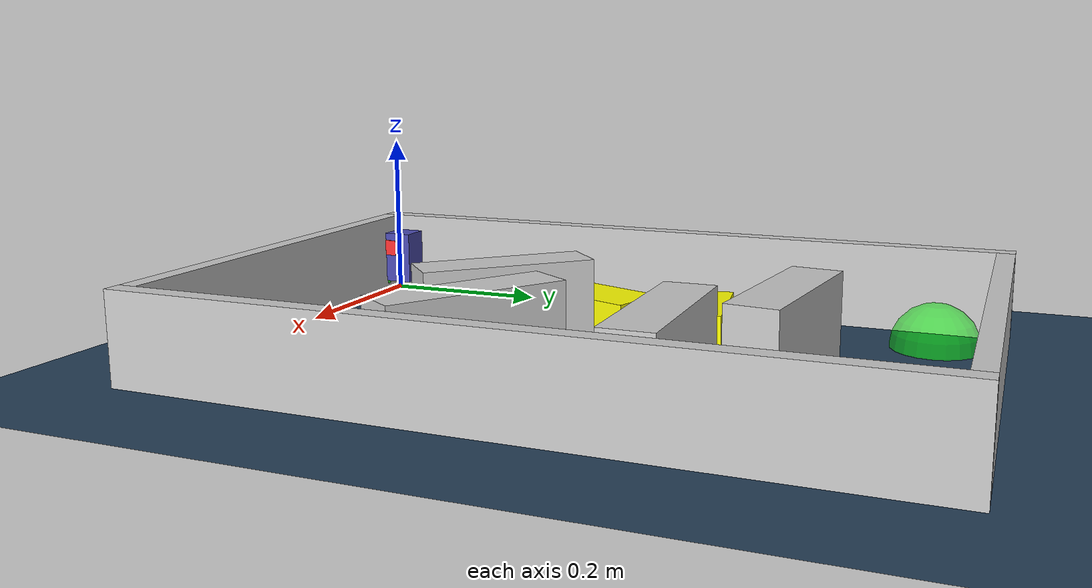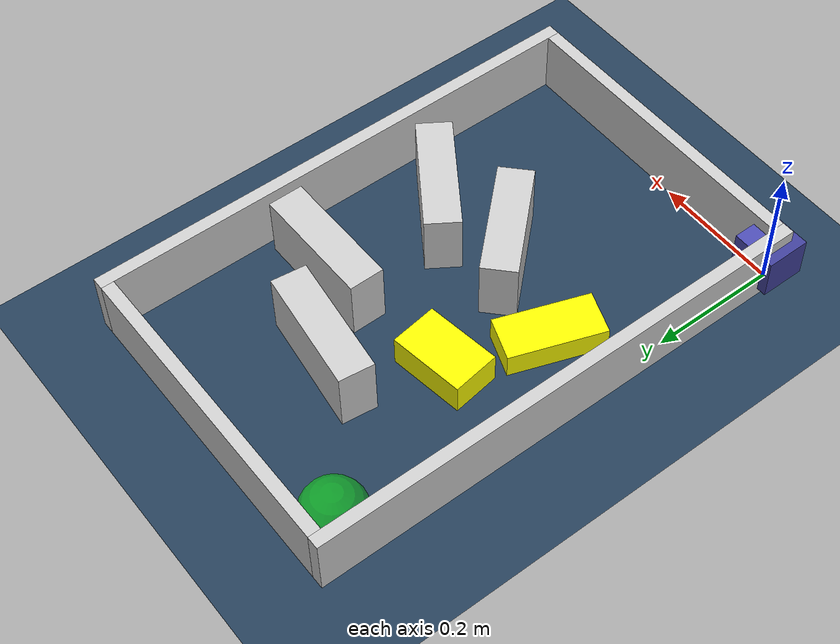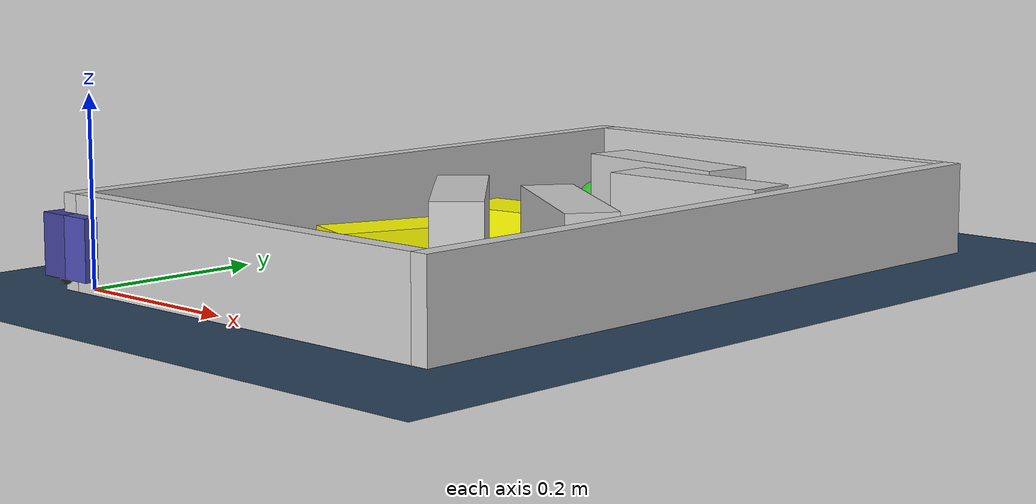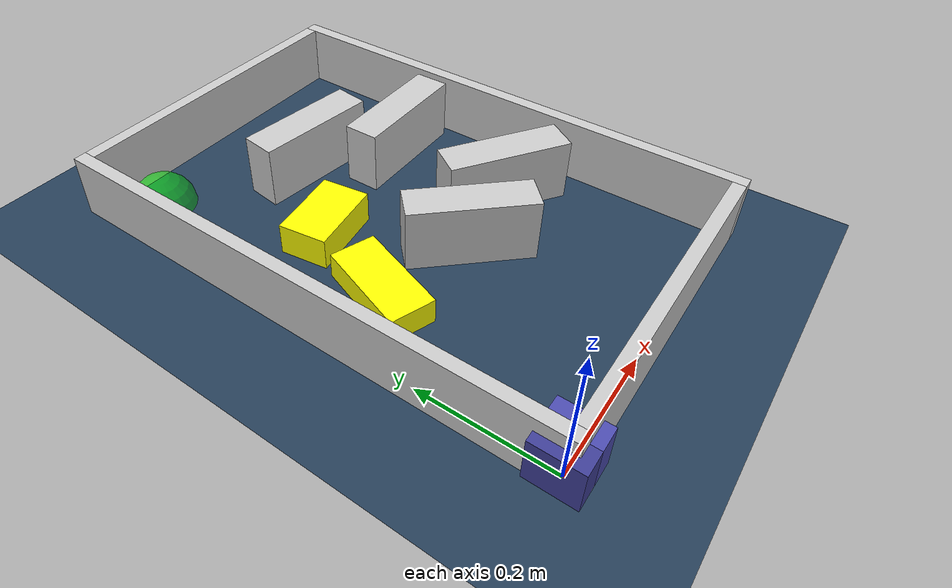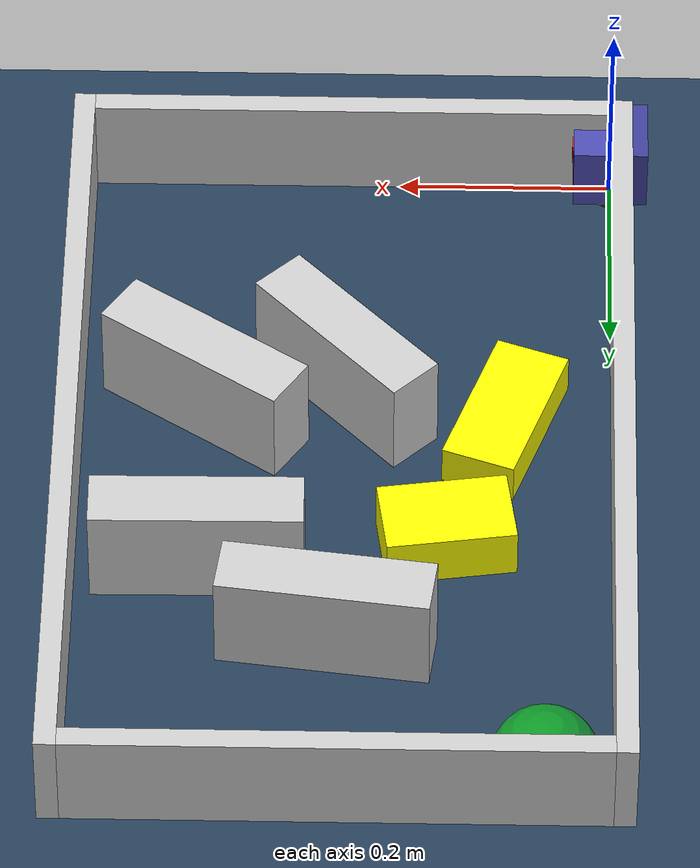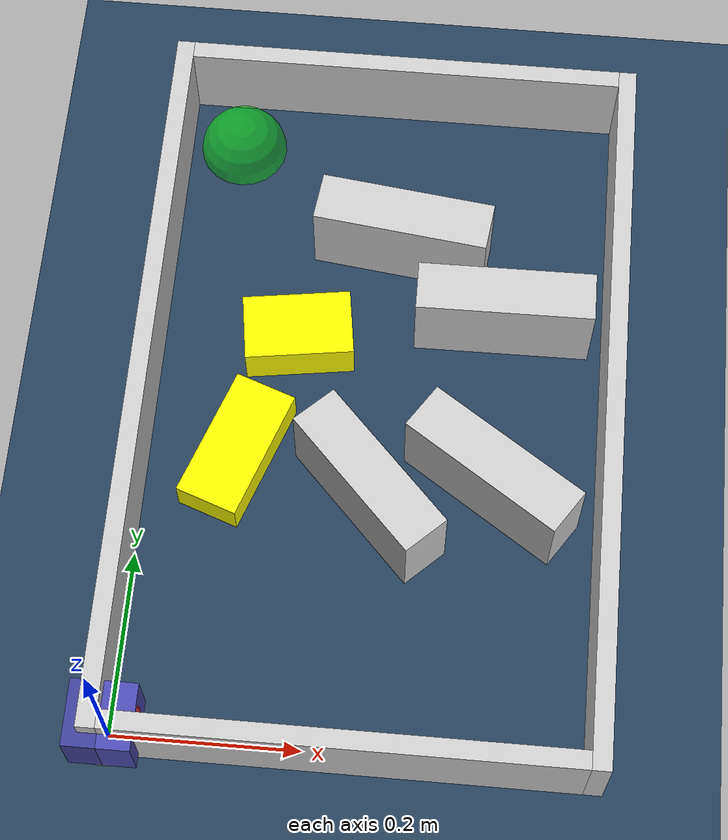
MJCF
<?xml version="1.0" ?>
<mujoco model="generated_environment">
  <option cone="elliptic" integrator="implicitfast" iterations="100" timestep="0.002"/>
  <default>
    <geom density="1"/>
  </default>
  <asset>
    <texture builtin="gradient" height="3072" rgb1="0.3 0.5 0.7" rgb2="0 0 0" type="skybox" width="512"/>
    <texture builtin="checker" height="300" mark="edge" markrgb="0.8 0.8 0.8" name="groundplane" rgb1="0.2 0.3 0.4" rgb2="0.1 0.2 0.3" type="2d" width="300"/>
    <material name="groundplane" reflectance="0.2" texrepeat="5 5" texture="groundplane" texuniform="true"/>
    <material name="robot" rgba="1.0 1.0 0.0 1.0"/>
  </asset>
  <include file="/home/dhruv/projects_dhruv/namo/namo_cpp/test_xml/little-car-modeling-package/assets/mjcf/little_car.xml"/>
  <worldbody>
    <light dir="0 0 -1" directional="true" pos="0 0 1.5"/>
    <geom condim="4" friction="0.5 0.005 0.001" material="groundplane" name="floor" size="0 0 0.05" type="plane"/>
    <body name="walls">
      <geom name="wall_1" condim="4" pos="-0.01 0.3875 0.05" friction="1 0.005 0.0001" rgba="0.800000011920929 0.800000011920929 0.800000011920929 1.0" size="0.01 0.40750000000000003 0.05" type="box"/>
      <geom name="wall_2" condim="4" pos="0.5 0.3875 0.05" friction="1 0.005 0.0001" rgba="0.800000011920929 0.800000011920929 0.800000011920929 1.0" size="0.01 0.40750000000000003 0.05" type="box"/>
      <geom name="wall_3" condim="4" pos="0.245 -0.01 0.05" friction="1 0.005 0.0001" rgba="0.800000011920929 0.800000011920929 0.800000011920929 1.0" size="0.245 0.01 0.05" type="box"/>
      <geom name="wall_4" condim="4" pos="0.245 0.785 0.05" friction="1 0.005 0.0001" rgba="0.800000011920929 0.800000011920929 0.800000011920929 1.0" size="0.245 0.01 0.05" type="box"/>
    </body>
    <body name="obstacle_1_movable">
      <geom name="obstacle_1_movable" condim="4" pos="0.0978545207123893 0.32250362100211855 0.02" quat="-0.9852018018598692 0 0 0.17139839442674834" friction="1 0.005 0.0001" rgba="1 1 0 1" size="0.035 0.075 0.02" type="box" mass="0.1"/>
      <joint type="free"/>
    </body>
    <body name="obstacle_2_movable">
      <geom name="obstacle_2_movable" condim="4" pos="0.15093003936922073 0.4662236351504974 0.025" quat="0.6542216612286962 0 0 0.7563028612792398" friction="1 0.005 0.0001" rgba="1 1 0 1" size="0.0375 0.06 0.025" type="box" mass="0.1"/>
      <joint type="free"/>
    </body>
    <body name="wall_5">
      <geom name="wall_5" condim="4" pos="0.25834700745999967 0.5911051566533808 0.05" quat="0.7497984487805279 0 0 0.6616662952019803" friction="1 0.005 0.0001" rgba="0.800000011920929 0.800000011920929 0.800000011920929 1.0" size="0.0275 0.0975 0.05" type="box"/>
    </body>
    <body name="wall_6">
      <geom name="wall_6" condim="4" pos="0.37614589557786055 0.3024728729309002 0.05" quat="-0.47141629140005126 0 0 0.8819108119320355" friction="1 0.005 0.0001" rgba="0.800000011920929 0.800000011920929 0.800000011920929 1.0" size="0.0275 0.0975 0.05" type="box"/>
    </body>
    <body name="wall_7">
      <geom name="wall_7" condim="4" pos="0.37719919326091456 0.500991200268152 0.05" quat="0.704268696426909 0 0 0.709933520291261" friction="1 0.005 0.0001" rgba="0.800000011920929 0.800000011920929 0.800000011920929 1.0" size="0.0275 0.0975 0.05" type="box"/>
    </body>
    <body name="wall_8">
      <geom name="wall_8" condim="4" pos="0.24609226685444724 0.27899887152184866 0.05" quat="0.3956120173282117 0 0 0.9184177327041888" friction="1 0.005 0.0001" rgba="0.800000011920929 0.800000011920929 0.800000011920929 1.0" size="0.095 0.0275 0.05" type="box"/>
    </body>
    <site name="goal" type="sphere" size="0.05 0.05 0.05" rgba="0 1 0 0.5" pos="0.060502 0.718623 0.0"/>
  </worldbody>
</mujoco>

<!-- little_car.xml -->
<mujoco model="little_car">
  <compiler angle="radian" autolimits="true"/>
  <default>
    <geom condim="4"/>
    <joint damping="0.01" armature="0.0001"/>
  </default>
  <worldbody>
    <body name="car" pos="0 0 0.010000">
      <freejoint name="car_freejoint"/>
      <inertial pos="0.000000 0 0.037500" mass="0.350000"
                diaginertia="0.000266 0.000266 0.000286"/>
      <geom name="front_chassis_collision" type="box" pos="0.017500 0 0.037500"
            size="0.017500 0.035000 0.032500"
            rgba="0.3 0.3 0.7 1"/>
      <geom name="rear_chassis_collision" type="box" pos="-0.017500 0 0.037500"
            size="0.017500 0.035000 0.032500"
            rgba="0.25 0.25 0.6 1"/>
      <geom name="front_marker" type="box" pos="0.034000 0 0.050500"
            size="0.002000 0.015000 0.010000"
            rgba="1.0 0.2 0.2 1" contype="0" conaffinity="0"/>

      <body name="rear_support_body" pos="-0.030000 0.000000 0.002500">
        <joint name="rear_caster_joint" type="ball" damping="0.0001"/>
        <inertial pos="0 0 0" mass="0.025000"
                  diaginertia="0.000001 0.000001 0.000001"/>
        <geom name="rear_support" type="sphere"
              pos="0 0 0"
              size="0.002500"
              friction="0.000000 0.000000 0.000000"
              rgba="0.7 0.1 0.1 1"/>
      </body>

      <body name="front_support_body" pos="0.030000 0.000000 0.002500">
        <joint name="front_caster_joint" type="ball" damping="0.0001"/>
        <inertial pos="0 0 0" mass="0.025000"
                  diaginertia="0.000001 0.000001 0.000001"/>
        <geom name="front_support" type="sphere"
              pos="0 0 0"
              size="0.002500"
              friction="0.000000 0.000000 0.000000"
              rgba="0.1 0.7 0.1 1"/>
      </body>

      <body name="left_wheel" pos="0.000000 0.034000 0.015000">
        <inertial pos="0 0 0" mass="0.050000"
                  diaginertia="0.000003 0.000006 0.000003"/>
        <joint name="left_wheel_joint" type="hinge" axis="0 1 0"/>
        <geom name="left_wheel_collision" type="cylinder" size="0.015000 0.000500"
              euler="1.57079632679 0 0" rgba="0.1 0.1 0.1 1"/>
      </body>

      <body name="right_wheel" pos="0.000000 -0.034000 0.015000">
        <inertial pos="0 0 0" mass="0.050000"
                  diaginertia="0.000003 0.000006 0.000003"/>
        <joint name="right_wheel_joint" type="hinge" axis="0 1 0"/>
        <geom name="right_wheel_collision" type="cylinder" size="0.015000 0.000500"
              euler="1.57079632679 0 0" rgba="0.1 0.1 0.1 1"/>
      </body>
    </body>
  </worldbody>
  <contact>
    <exclude body1="car" body2="left_wheel"/>
    <exclude body1="car" body2="right_wheel"/>
  </contact>
  <actuator>
    <velocity name="left_wheel_drive" joint="left_wheel_joint"
              ctrlrange="-25.000000 25.000000"
              kv="0.750000" forcerange="-0.500000 0.500000"/>
    <velocity name="right_wheel_drive" joint="right_wheel_joint"
              ctrlrange="-25.000000 25.000000"
              kv="0.750000" forcerange="-0.500000 0.500000"/>
  </actuator>
</mujoco>
